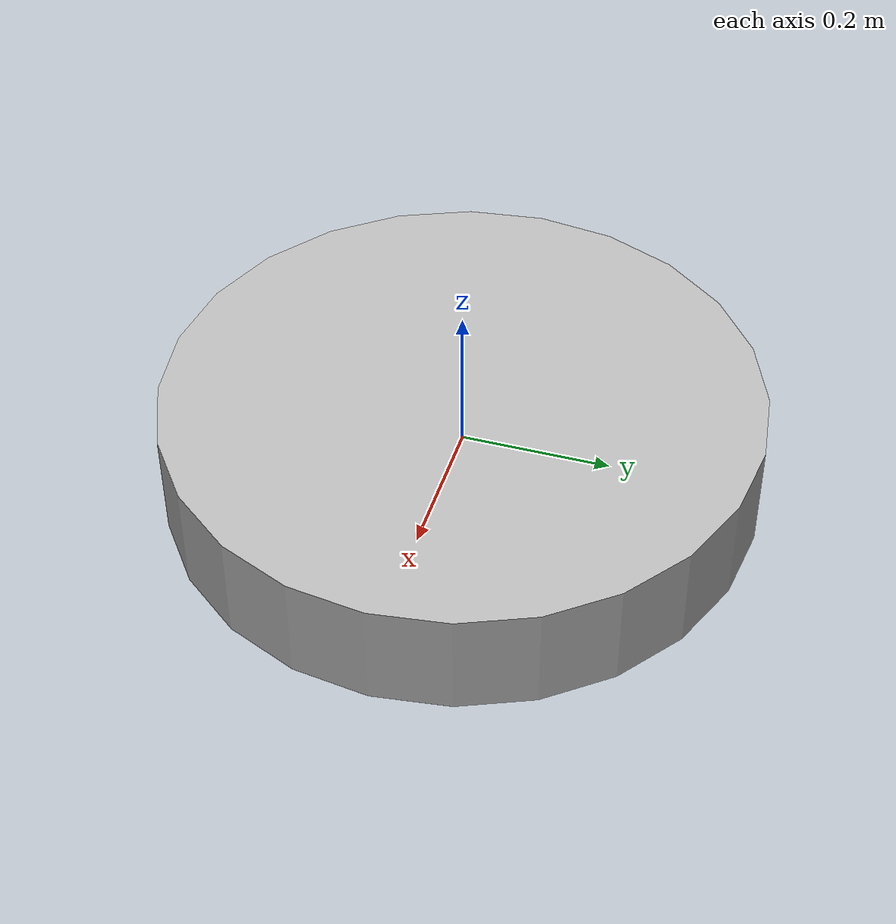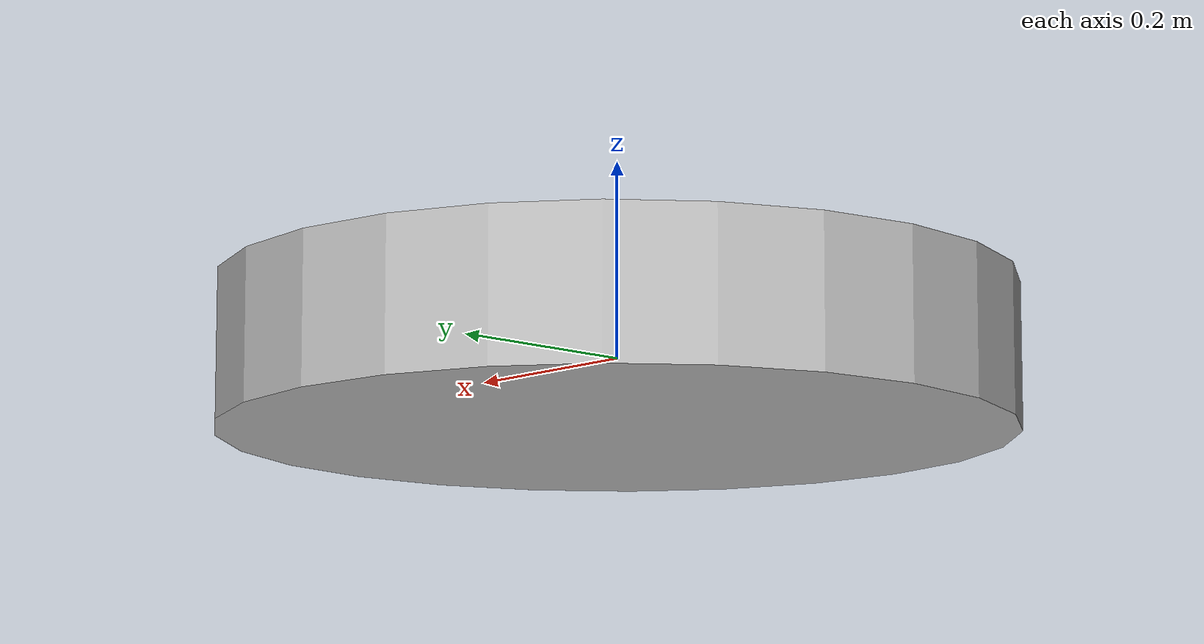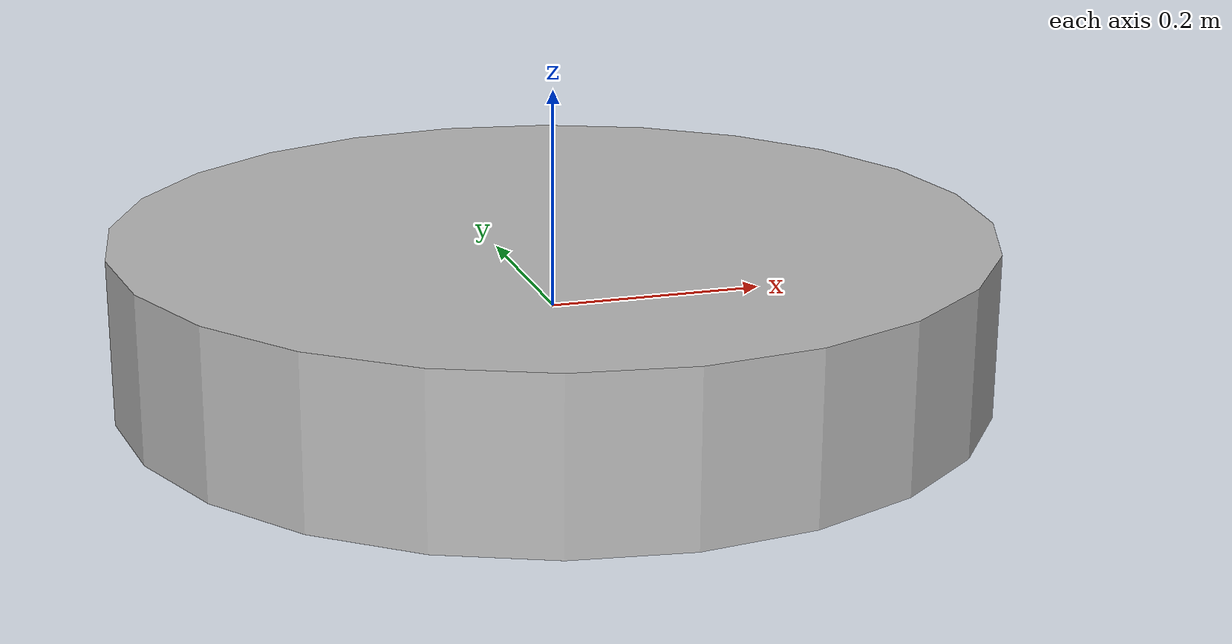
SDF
<?xml version="1.0" ?>
<sdf version="1.6">
  <model name="pallet">
    <link name="link">
      <visual name="visual">
        <geometry>
          <cylinder>
            <radius>0.4</radius>
            <length>0.15</length>
          </cylinder>
        </geometry>
      </visual>
    </link>
  </model>
</sdf>
